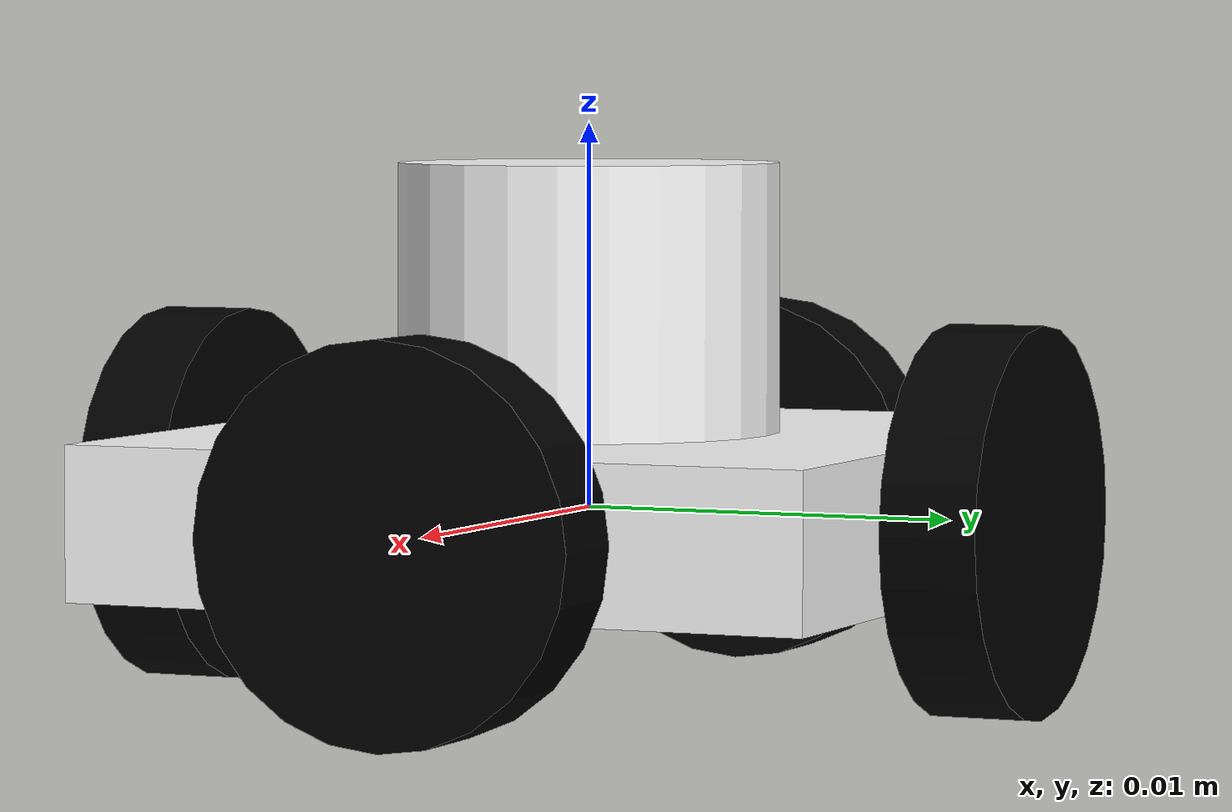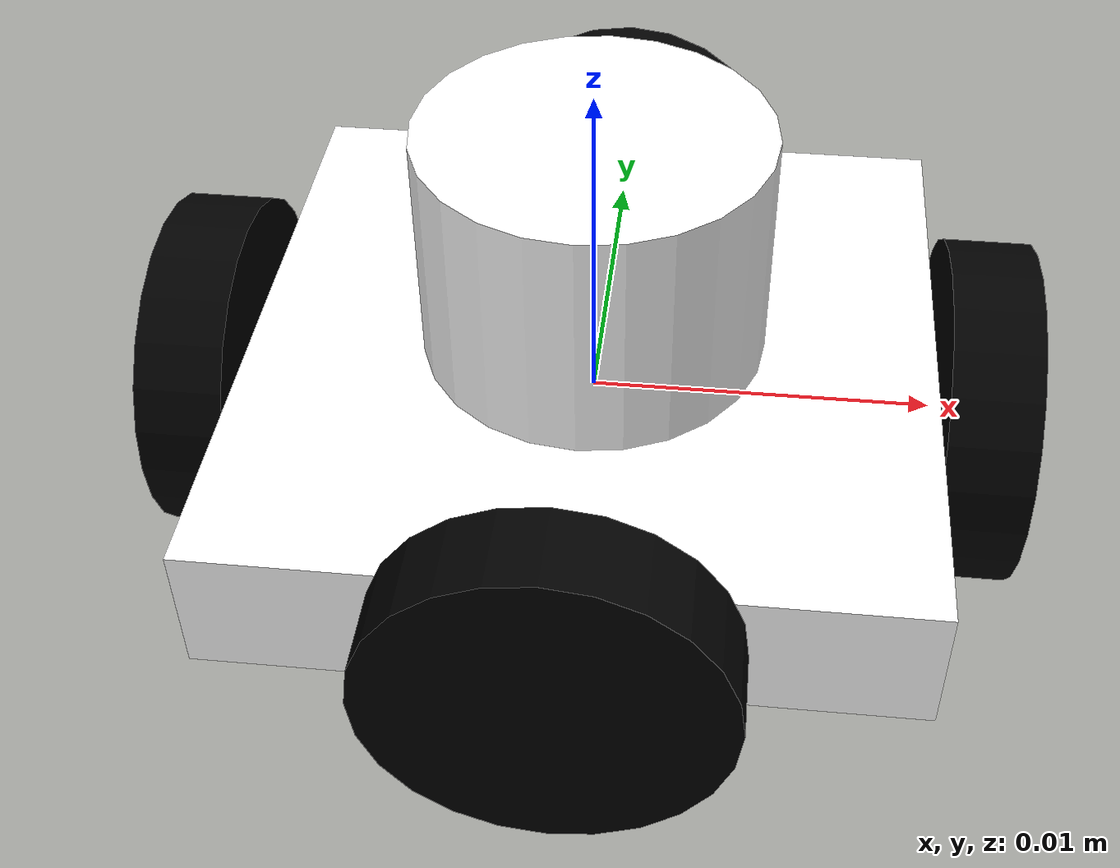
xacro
<?xml version="1.0" ?>

<robot name="mouse" xmlns:xacro="https://www.ros.org/wiki/xacro" >

    <!--============================ Adjust bot params here =========================-->
    <!-- diameter of wheel default = 0.010-->
    <xacro:property name="D" value="0.010"/>
    <!-- width of wheel default = 0.0025-->
    <xacro:property name="W" value="0.0025"/>
    <!-- side length of base default = 0.02-->
    <xacro:property name="S" value="0.020"/>
    <!-- diameter of lidar default = 0.01-->
    <xacro:property name="L" value="0.010"/>
    <!-- height of lidar from base surface -->
    <xacro:property name="H" value="0.007"/>
    <!-- thickness of base default = 0.004-->
    <xacro:property name="T" value="0.004"/>
    <!-- height of wheel axes from base TF frame -->
    <xacro:property name="E" value="0.000"/>

    <!-- mass of the base -->
    <xacro:property name="M" value="0.4"/>
    <!-- mass of one wheel -->
    <xacro:property name="m" value="0.05"/>

    <material name="black">
    <color rgba="0.0 0.0 0.0 1.0"/>
    </material>
    <material name="blue">
    <color rgba="0.203125 0.23828125 0.28515625 1.0"/>
    </material>
    <material name="green">
    <color rgba="0.0 0.8 0.0 1.0"/>
    </material>
    <material name="grey">
    <color rgba="0.2 0.2 0.2 1.0"/>
    </material>
    <material name="orange">
    <color rgba="1.0 0.423529411765 0.0392156862745 1.0"/>
    </material>
    <material name="brown">
    <color rgba="0.870588235294 0.811764705882 0.764705882353 1.0"/>
    </material>
    <material name="red">
    <color rgba="0.80078125 0.12890625 0.1328125 1.0"/>
    </material>
    <material name="white">
    <color rgba="1.0 1.0 1.0 1.0"/>
    </material>

    <!-- ======================================= WHEEL AND JOINT ======================================== -->
    <xacro:macro name="wheel" params="name mass radius width">
        <link name="${name}">
            <inertial>
                <mass value="${mass}"/>
                <inertia ixx="${mass*(3*radius*radius + width*width)/12}"
                        ixy="0.0"
                        ixz="0.0"
                        iyy="${mass*(3*radius*radius + width*width)/12}"
                        iyz="0.0"
                        izz="${mass*radius*radius/2}"/>
            </inertial>
            <visual>
                <geometry>
                    <cylinder radius="${radius}" length="${width}"/>
                </geometry>
                <material name="black">
                    <color rgba="0.0 0.0 0.0 1.0"/>
                </material>
            </visual>
            <surface>
                <friction>
                    <ode>
                        <mu>0.0</mu>
                        <mu2>0.000001</mu2>
                    </ode>
                </friction>
            </surface>
            <collision>
                <geometry>
                    <cylinder radius="${radius}" length="${width}"/>
                </geometry>
            </collision>
        </link>
        <gazebo reference="${name}">
            <material>Gazebo/Black</material>
            <kp>100000.0</kp>
            <kd>100000.0</kd>
            <mu1>0.001</mu1>
            <mu2>1.0</mu2>
            <fdir1>0 0 1</fdir1>
        </gazebo>
    </xacro:macro>

    <xacro:macro name="wheel_joint" params="name parent child xyz rpy">
        <joint name="${name}" type="continuous">
            <parent link="${parent}"/>
            <child link="${child}"/>
            <origin xyz="${xyz}" rpy="${rpy}"/>
            <axis xyz="0 0 1" rpy="0 0 0"/>
            <limit effort="1000" velocity="1000"/>
            <joint_properties damping="1.0" friction="1.0" />
        </joint>
    </xacro:macro>

    <!-- ========================================== MAIN BODY =========================================== -->
    <link name="micromouse_frame"/>
    <joint name="micromouse_frame_to_main_body" type="fixed">
        <parent link="micromouse_frame"/>
        <child link="main_body"/>
    </joint>

    <link name="main_body">
        <inertial>
            <mass value="${M}"/>
            <inertia ixx="${M*(S*S + T*T)/12}" ixy="0.0" ixz="0.0" iyy="${M*(S*S + T*T)/12}" iyz="0.0" izz="${M*S*S/6}"/>
        </inertial>
        <visual>
            <geometry>
                <box size="${S} ${S} ${T}"/>
            </geometry>
            <material name="white">
                <color rgba="1.0 1.0 1.0 1.0"/>
            </material>
        </visual>
        <visual>
            <origin xyz="0.0 0.0 ${H/2+T/2}"/>
            <geometry>
                <cylinder radius="${L/2}" length="${H}"/>
            </geometry>
            <material name="white">
                <color rgba="1.0 1.0 1.0 1.0"/>
            </material>
        </visual>
        <collision>
            <geometry>
                <box size="${S} ${S} ${T}"/>
            </geometry>
        </collision>
    </link>

    <gazebo reference="main_body">
        <material>Gazebo/Blue</material>
    </gazebo>

    <!-- ======================================= wheels ======================================== -->
    <xacro:wheel name="w1" mass="${m}" radius="${D/2}" width="${W}"/>
    <xacro:wheel name="w2" mass="${m}" radius="${D/2}" width="${W}"/>
    <xacro:wheel name="w3" mass="${m}" radius="${D/2}" width="${W}"/>
    <xacro:wheel name="w4" mass="${m}" radius="${D/2}" width="${W}"/>

    <xacro:wheel_joint name="j1" parent="main_body" child="w1" xyz="   ${S/2 + W/2}               0 ${E}" rpy="0 1.57 3.14"/>
    <xacro:wheel_joint name="j2" parent="main_body" child="w2" xyz="              0    ${S/2 + W/2} ${E}" rpy="0 1.57 1.57"/>
    <xacro:wheel_joint name="j3" parent="main_body" child="w3" xyz="${-(S/2 + W/2)}               0 ${E}" rpy="0 1.57 3.14"/>
    <xacro:wheel_joint name="j4" parent="main_body" child="w4" xyz="              0 ${-(S/2 + W/2)} ${E}" rpy="0 1.57 1.57"/>

    <!-- ================================== differential drive plugins ===================================== -->

    <gazebo>
        <!-- X direction -->
        <plugin filename="libgazebo_ros_diff_drive.so" name="differential_drive_controller">
        <alwaysOn>true</alwaysOn>
        <updateRate>40</updateRate>
        <leftJoint>j2</leftJoint>
        <rightJoint>j4</rightJoint>
        <wheelSeparation>${S+W}</wheelSeparation>
        <wheelDiameter>${D}</wheelDiameter>
        <torque>5</torque>
        <commandTopic>cmd_vel_x</commandTopic>
        <odometryTopic>odom</odometryTopic>
        <odometryFrame>odom</odometryFrame>
        <robotBaseFrame>micromouse_frame</robotBaseFrame>

        <!-- some extra stuff to get rid of the warnings -->
        <rosDebugLevel>na</rosDebugLevel>
        <publishWheelTF>false</publishWheelTF>
        <publishOdomTF>true</publishOdomTF>
        <publishWheelJointState>false</publishWheelJointState>
        <wheelAcceleration>0</wheelAcceleration>
        <wheelTorque>5</wheelTorque>
        <publishTf>1</publishTf>
        </plugin>

        <!-- Y direction -->
        <plugin filename="libgazebo_ros_diff_drive.so" name="differential_drive_controller">
        <alwaysOn>true</alwaysOn>
        <updateRate>40</updateRate>
        <leftJoint>j3</leftJoint>
        <rightJoint>j1</rightJoint>
        <wheelSeparation>${S+W}</wheelSeparation>
        <wheelDiameter>${D}</wheelDiameter>
        <torque>5</torque>
        <commandTopic>cmd_vel_y</commandTopic>
        <odometryTopic>odom</odometryTopic>
        <odometryFrame>odom</odometryFrame>
        <robotBaseFrame>micromouse_frame</robotBaseFrame>

        <!-- some extra stuff to get rid of the warnings -->
        <rosDebugLevel>na</rosDebugLevel>
        <publishWheelTF>false</publishWheelTF>
        <publishOdomTF>true</publishOdomTF>
        <publishWheelJointState>false</publishWheelJointState>
        <wheelAcceleration>0</wheelAcceleration>
        <wheelTorque>5</wheelTorque>
        <publishTf>1</publishTf>
        </plugin>
    </gazebo>

<!-- ======================================== everything lidar ===================================== -->

    <link name="lidar_frame"/>
    <joint name="micromouse_frame_to_lidar" type="fixed">
        <parent link="micromouse_frame"/>
        <child link="lidar_frame"/>
        <origin xyz="0.0 0.0 ${H+T/2+0.001}"/>
    </joint>

    <gazebo reference="lidar_frame">
        <sensor type="ray" name="head_hokuyo_sensor">
            <pose>0 0 0 0 0 0</pose>
            <visualize>false</visualize>
            <update_rate>40</update_rate>
            <ray>
                <scan>
                    <horizontal>
                        <samples>360</samples>
                        <resolution>1</resolution>
                        <!-- default = -3.14 -->
                        <min_angle>-3.14</min_angle>
                        <!-- default = 3.14 -->
                        <max_angle>3.14</max_angle>
                    </horizontal>
                </scan>
                <range>
                    <!-- default = 0.005 -->
                    <min>0.005</min>
                    <max>3.0</max>
                    <resolution>0.001</resolution>
                </range>
            </ray>
            <plugin name="gazebo_ros_head_hokuyo_controller" filename="libgazebo_ros_laser.so">
                <topicName>laser/scan</topicName>
                <frameName>lidar_frame</frameName>
            </plugin>
        </sensor>
    </gazebo>
</robot>
